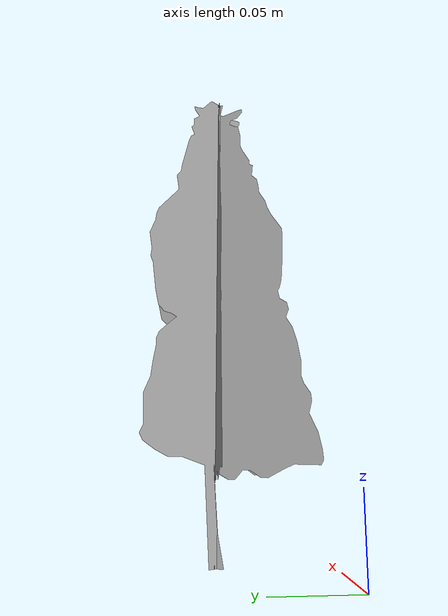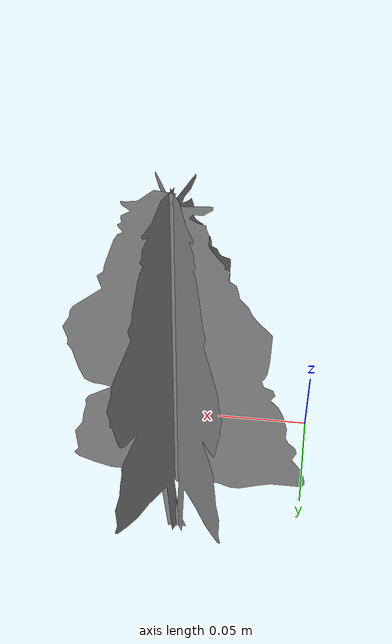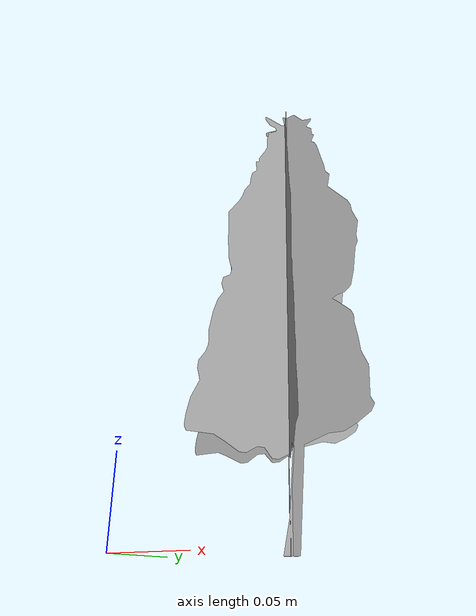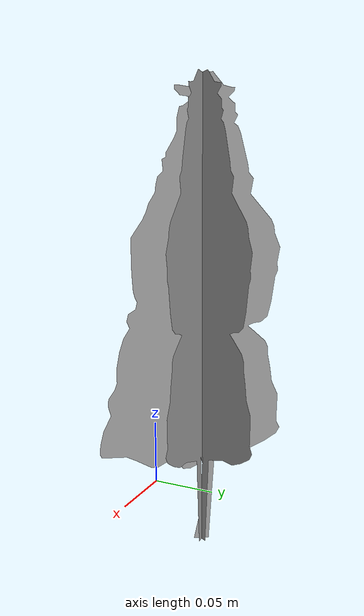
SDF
<?xml version="1.0" ?>
<sdf version="1.5">
  <model name="small_tree">
    <pose>0 0 0  0 0 0</pose>
    <static>true</static>
    <link name="link">
      <inertial>
        <mass>40.0</mass>
        <inertia>
          <ixx>1</ixx>
          <ixy>0</ixy>
          <ixz>0</ixz>
          <iyy>1</iyy>
          <iyz>0</iyz>
          <izz>1</izz>
        </inertia>
      </inertial>

      <collision name="collision">
        <geometry>
          <cylinder>
            <length>5</length>
            <radius>0.3</radius>
          </cylinder>
        </geometry>
        <pose>0.25 0.25 1.5  0 0 0</pose>
      </collision>

      <visual name="visual">
        <geometry>
          <mesh>
            <uri>model://small_tree/meshes/small_tree.dae</uri>
              <name>Gazebo/Green</name>
	  <scale>0.5 0.5 0.5</scale>
          </mesh>
	      </geometry>
      </visual>
    </link>
  </model>
</sdf>
